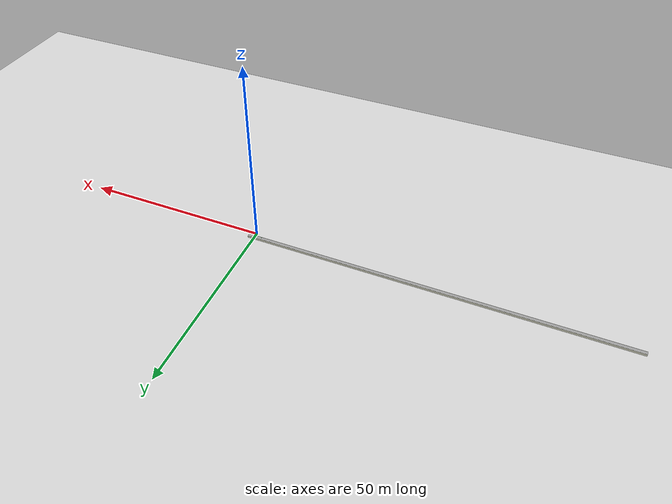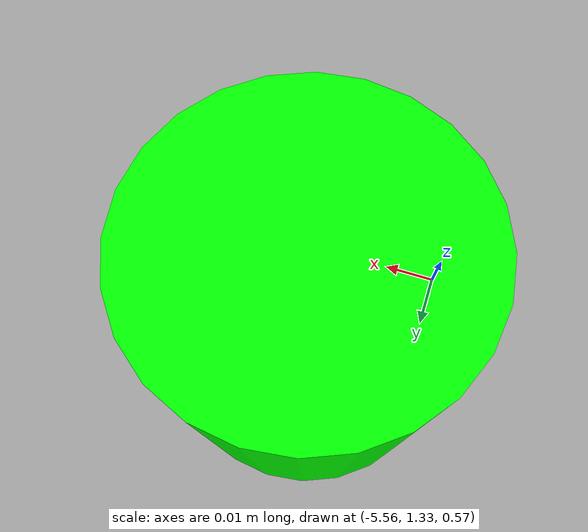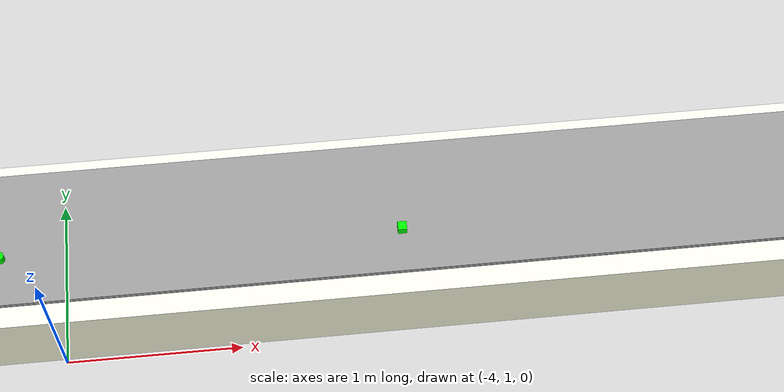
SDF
<sdf version="1.6">
 <world name="default">
  <light name="sun" type="directional">
   <pose>0 0 10 0 -0 0</pose>
   <diffuse>0.8 0.8 0.8 1</diffuse>
   <specular>0.2 0.2 0.2 1</specular>
   <attenuation>
    <range>1000</range>
    <constant>0.9</constant>
    <linear>0.01</linear>
    <quadratic>0.001</quadratic>
   </attenuation>
   <direction>-0.5 0.1 -0.9</direction>
  </light>
  <model name="ground_plane">
   <static>1</static>
   <link name="link">
    <collision name="collision">
     <geometry><plane><normal>0 0 1</normal><size>100 100</size></plane></geometry>
     <surface>
      <contact><collide_bitmask>65535</collide_bitmask></contact>
      <friction><ode><mu>100</mu><mu2>50</mu2></ode></friction>
     </surface>
    </collision>
    <visual name="visual">
     <cast_shadows>0</cast_shadows>
     <geometry><plane><normal>0 0 1</normal><size>100 100</size></plane></geometry>
     <material>
      <script><uri>file://media/materials/scripts/gazebo.material</uri><name>Gazebo/Grey</name></script>
     </material>
    </visual>
   </link>
  </model>
  <gravity>0 0 -9.8</gravity>
  <magnetic_field>6e-06 2.3e-05 -4.2e-05</magnetic_field>
  <atmosphere type="adiabatic"/>
  <physics name="default_physics" default="0" type="ode">
   <max_step_size>0.001</max_step_size>
   <real_time_factor>1</real_time_factor>
   <real_time_update_rate>1000</real_time_update_rate>
  </physics>
  <scene><ambient>0.4 0.4 0.4 1</ambient><background>0.7 0.7 0.7 1</background><shadows>1</shadows></scene>
  <audio><device>default</device></audio>
  <spherical_coordinates>
   <surface_model>EARTH_WGS84</surface_model>
   <latitude_deg>0</latitude_deg>
   <longitude_deg>0</longitude_deg>
   <elevation>0</elevation>
   <heading_deg>0</heading_deg>
  </spherical_coordinates>
  <model name="GREEN_BOX">
   <link name="link_0">
    <inertial>
     <mass>1</mass>
     <inertia>
      <ixx>0.166667</ixx>
      <ixy>0</ixy>
      <ixz>0</ixz>
      <iyy>0.166667</iyy>
      <iyz>0</iyz>
      <izz>0.166667</izz>
     </inertia>
    </inertial>
    <visual name="visual">
     <geometry><box><size>0.05 0.05 0.05</size></box></geometry>
     <material>
      <lighting>1</lighting>
      <script><uri>file://media/materials/scripts/gazebo.material</uri><name>Gazebo/Grey</name></script>
      <shader type="vertex"><normal_map>__default__</normal_map></shader>
      <ambient>0 1 0 1</ambient>
      <diffuse>0.7 0.7 0.7 1</diffuse>
      <specular>0.01 0.01 0.01 1</specular>
      <emissive>0 0 0 1</emissive>
     </material>
    </visual>
    <collision name="collision">
     <geometry><box><size>0.05 0.05 0.05</size></box></geometry>
     <surface>
      <friction>
       <ode><mu>1</mu><mu2>1</mu2><fdir1>0 0 0</fdir1><slip1>0</slip1><slip2>0</slip2></ode>
       <torsional>
        <coefficient>1</coefficient>
        <patch_radius>0</patch_radius>
        <surface_radius>0</surface_radius>
        <use_patch_radius>1</use_patch_radius>
        <ode><slip>0</slip></ode>
       </torsional>
      </friction>
      <bounce><restitution_coefficient>0</restitution_coefficient><threshold>1e+06</threshold></bounce>
      <contact>
       <collide_without_contact>0</collide_without_contact>
       <collide_without_contact_bitmask>1</collide_without_contact_bitmask>
       <collide_bitmask>1</collide_bitmask>
       <ode>
        <soft_cfm>0</soft_cfm>
        <soft_erp>0.2</soft_erp>
        <kp>1e+13</kp>
        <kd>1</kd>
        <max_vel>0.01</max_vel>
        <min_depth>0</min_depth>
       </ode>
       <bullet>
        <split_impulse>1</split_impulse>
        <split_impulse_penetration_threshold>-0.01</split_impulse_penetration_threshold>
        <soft_cfm>0</soft_cfm>
        <soft_erp>0.2</soft_erp>
        <kp>1e+13</kp>
        <kd>1</kd>
       </bullet>
      </contact>
     </surface>
    </collision>
   </link>
   <static>0</static>
   <pose>-2.05795 1.3719 0.599999 3e-06 6e-06 -0.005317</pose>
  </model>
  <model name="GREEN_CYLINDER">
   <link name="link_1">
    <inertial>
     <mass>1</mass>
     <inertia><ixx>0.145833</ixx><ixy>0</ixy><ixz>0</ixz><iyy>0.145833</iyy><iyz>0</iyz><izz>0.125</izz></inertia>
    </inertial>
    <visual name="visual">
     <geometry><cylinder><radius>0.025</radius><length>0.05</length></cylinder></geometry>
     <material>
      <lighting>1</lighting>
      <script><uri>file://media/materials/scripts/gazebo.material</uri><name>Gazebo/Grey</name></script>
      <shader type="vertex"><normal_map>__default__</normal_map></shader>
      <ambient>0.3 0.3 0.3 1</ambient>
      <diffuse>0 1 0 1</diffuse>
      <specular>0.01 0.01 0.01 1</specular>
      <emissive>0 0 0 1</emissive>
     </material>
    </visual>
    <collision name="collision">
     <geometry><cylinder><radius>0.025</radius><length>0.05</length></cylinder></geometry>
     <surface>
      <friction>
       <ode><mu>1</mu><mu2>1</mu2><fdir1>0 0 0</fdir1><slip1>0</slip1><slip2>0</slip2></ode>
       <torsional>
        <coefficient>1</coefficient>
        <patch_radius>0</patch_radius>
        <surface_radius>0</surface_radius>
        <use_patch_radius>1</use_patch_radius>
        <ode><slip>0</slip></ode>
       </torsional>
      </friction>
      <bounce><restitution_coefficient>0</restitution_coefficient><threshold>1e+06</threshold></bounce>
      <contact>
       <collide_without_contact>0</collide_without_contact>
       <collide_without_contact_bitmask>1</collide_without_contact_bitmask>
       <collide_bitmask>1</collide_bitmask>
       <ode>
        <soft_cfm>0</soft_cfm>
        <soft_erp>0.2</soft_erp>
        <kp>1e+13</kp>
        <kd>1</kd>
        <max_vel>0.01</max_vel>
        <min_depth>0</min_depth>
       </ode>
       <bullet>
        <split_impulse>1</split_impulse>
        <split_impulse_penetration_threshold>-0.01</split_impulse_penetration_threshold>
        <soft_cfm>0</soft_cfm>
        <soft_erp>0.2</soft_erp>
        <kp>1e+13</kp>
        <kd>1</kd>
       </bullet>
      </contact>
     </surface>
    </collision>
   </link>
   <static>0</static>
   <pose>-4.26788 1.3959 0.600006 -0.000112 -0.00025 0.001709</pose>
  </model>
  <model name="GREEN_CYLINDER_clone">
   <link name="link_1">
    <inertial>
     <mass>1</mass>
     <inertia><ixx>0.145833</ixx><ixy>0</ixy><ixz>0</ixz><iyy>0.145833</iyy><iyz>0</iyz><izz>0.125</izz></inertia>
    </inertial>
    <visual name="visual">
     <geometry><cylinder><radius>0.025</radius><length>0.05</length></cylinder></geometry>
     <material>
      <lighting>1</lighting>
      <script><uri>file://media/materials/scripts/gazebo.material</uri><name>Gazebo/Grey</name></script>
      <shader type="vertex"><normal_map>__default__</normal_map></shader>
      <ambient>0.3 0.3 0.3 1</ambient>
      <diffuse>0 1 0 1</diffuse>
      <specular>0.01 0.01 0.01 1</specular>
      <emissive>0 0 0 1</emissive>
     </material>
    </visual>
    <collision name="collision">
     <geometry><cylinder><radius>0.025</radius><length>0.05</length></cylinder></geometry>
     <surface>
      <friction>
       <ode><mu>1</mu><mu2>1</mu2><fdir1>0 0 0</fdir1><slip1>0</slip1><slip2>0</slip2></ode>
       <torsional>
        <coefficient>1</coefficient>
        <patch_radius>0</patch_radius>
        <surface_radius>0</surface_radius>
        <use_patch_radius>1</use_patch_radius>
        <ode><slip>0</slip></ode>
       </torsional>
      </friction>
      <bounce><restitution_coefficient>0</restitution_coefficient><threshold>1e+06</threshold></bounce>
      <contact>
       <collide_without_contact>0</collide_without_contact>
       <collide_without_contact_bitmask>1</collide_without_contact_bitmask>
       <collide_bitmask>1</collide_bitmask>
       <ode>
        <soft_cfm>0</soft_cfm>
        <soft_erp>0.2</soft_erp>
        <kp>1e+13</kp>
        <kd>1</kd>
        <max_vel>0.01</max_vel>
        <min_depth>0</min_depth>
       </ode>
       <bullet>
        <split_impulse>1</split_impulse>
        <split_impulse_penetration_threshold>-0.01</split_impulse_penetration_threshold>
        <soft_cfm>0</soft_cfm>
        <soft_erp>0.2</soft_erp>
        <kp>1e+13</kp>
        <kd>1</kd>
       </bullet>
      </contact>
     </surface>
    </collision>
   </link>
   <static>0</static>
   <pose>-5.53995 1.35356 0.599996 -0.000112 -0.000248 0.002009</pose>
  </model>
  <model name="NewFliessband_2_">
   <link name="link_2">
    <inertial>
     <mass>500000</mass>
     <inertia>
      <ixx>52083.3</ixx>
      <ixy>0</ixy>
      <ixz>0</ixz>
      <iyy>4.16677e+08</iyy>
      <iyz>0</iyz>
      <izz>4.16708e+08</izz>
     </inertia>
    </inertial>
    <pose>0 -0 -0.15 0 -0 0</pose>
    <visual name="visual">
     <geometry><box><size>100 1 0.5</size></box></geometry>
     <material>
      <lighting>1</lighting>
      <script><uri>file://media/materials/scripts/gazebo.material</uri><name>Gazebo/Grey</name></script>
      <shader type="pixel"><normal_map>__default__</normal_map></shader>
      <ambient>1 1 0.9 1</ambient>
      <diffuse>0.7 0.7 0.7 1</diffuse>
      <specular>0.01 0.01 0.01 1</specular>
      <emissive>0 0 0 1</emissive>
     </material>
    </visual>
    <collision name="collision">
     <geometry><box><size>100 1 0.5</size></box></geometry>
     <surface>
      <friction>
       <ode><mu>1</mu><mu2>1</mu2><fdir1>0 0 0</fdir1><slip1>0</slip1><slip2>0</slip2></ode>
       <torsional>
        <coefficient>1</coefficient>
        <patch_radius>0</patch_radius>
        <surface_radius>0</surface_radius>
        <use_patch_radius>1</use_patch_radius>
        <ode><slip>0</slip></ode>
       </torsional>
      </friction>
      <bounce><restitution_coefficient>0</restitution_coefficient><threshold>1e+06</threshold></bounce>
      <contact>
       <collide_without_contact>0</collide_without_contact>
       <collide_without_contact_bitmask>1</collide_without_contact_bitmask>
       <collide_bitmask>1</collide_bitmask>
       <ode>
        <soft_cfm>0</soft_cfm>
        <soft_erp>0.2</soft_erp>
        <kp>1e+13</kp>
        <kd>1</kd>
        <max_vel>0.01</max_vel>
        <min_depth>0</min_depth>
       </ode>
       <bullet>
        <split_impulse>1</split_impulse>
        <split_impulse_penetration_threshold>-0.01</split_impulse_penetration_threshold>
        <soft_cfm>0</soft_cfm>
        <soft_erp>0.2</soft_erp>
        <kp>1e+13</kp>
        <kd>1</kd>
       </bullet>
      </contact>
     </surface>
    </collision>
   </link>
   <link name="link_2_clone">
    <inertial>
     <mass>10000</mass>
     <inertia>
      <ixx>1041.67</ixx>
      <ixy>0</ixy>
      <ixz>0</ixz>
      <iyy>8.33354e+06</iyy>
      <iyz>0</iyz>
      <izz>8.33417e+06</izz>
     </inertia>
    </inertial>
    <pose>-0 0 0.15 0 -0 0</pose>
    <visual name="visual">
     <geometry><box><size>100 0.8 0.01</size></box></geometry>
     <material>
      <lighting>1</lighting>
      <script><uri>file://media/materials/scripts/gazebo.material</uri><name>Gazebo/Grey</name></script>
      <shader type="pixel"><normal_map>__default__</normal_map></shader>
      <ambient>0 0 0 1</ambient>
      <diffuse>0.7 0.7 0.7 1</diffuse>
      <specular>0.01 0.01 0.01 1</specular>
      <emissive>0 0 0 1</emissive>
     </material>
    </visual>
    <collision name="collision">
     <geometry><box><size>100 0.8 0.01</size></box></geometry>
     <surface>
      <friction>
       <ode><mu>1</mu><mu2>1</mu2><fdir1>0 0 0</fdir1><slip1>0</slip1><slip2>0</slip2></ode>
       <torsional>
        <coefficient>1</coefficient>
        <patch_radius>0</patch_radius>
        <surface_radius>0</surface_radius>
        <use_patch_radius>1</use_patch_radius>
        <ode><slip>0</slip></ode>
       </torsional>
      </friction>
      <bounce><restitution_coefficient>0</restitution_coefficient><threshold>1e+06</threshold></bounce>
      <contact>
       <collide_without_contact>0</collide_without_contact>
       <collide_without_contact_bitmask>1</collide_without_contact_bitmask>
       <collide_bitmask>1</collide_bitmask>
       <ode>
        <soft_cfm>0</soft_cfm>
        <soft_erp>0.2</soft_erp>
        <kp>1e+13</kp>
        <kd>1</kd>
        <max_vel>0.01</max_vel>
        <min_depth>0</min_depth>
       </ode>
       <bullet>
        <split_impulse>1</split_impulse>
        <split_impulse_penetration_threshold>-0.01</split_impulse_penetration_threshold>
        <soft_cfm>0</soft_cfm>
        <soft_erp>0.2</soft_erp>
        <kp>1e+13</kp>
        <kd>1</kd>
       </bullet>
      </contact>
     </surface>
    </collision>
   </link>
   <link name="link_2_clone_clone">
    <inertial>
     <mass>200</mass>
     <inertia><ixx>10</ixx><ixy>0</ixy><ixz>0</ixz><iyy>10</iyy><iyz>0</iyz><izz>10</izz></inertia>
    </inertial>
    <pose>-0 0 0.17 0 -0 0</pose>
    <visual name="visual">
     <geometry><box><size>100 0.8 0.01</size></box></geometry>
     <material>
      <lighting>1</lighting>
      <script><uri>file://media/materials/scripts/gazebo.material</uri><name>Gazebo/Grey</name></script>
      <shader type="pixel"><normal_map>__default__</normal_map></shader>
      <ambient>0 0 0 1</ambient>
      <diffuse>0.7 0.7 0.7 1</diffuse>
      <specular>0.01 0.01 0.01 1</specular>
      <emissive>0 0 0 1</emissive>
     </material>
    </visual>
    <collision name="collision">
     <geometry><box><size>100 0.8 0.01</size></box></geometry>
     <surface>
      <friction>
       <ode><mu>1</mu><mu2>1</mu2><fdir1>0 0 0</fdir1><slip1>0</slip1><slip2>0</slip2></ode>
       <torsional>
        <coefficient>1</coefficient>
        <patch_radius>0</patch_radius>
        <surface_radius>0</surface_radius>
        <use_patch_radius>1</use_patch_radius>
        <ode><slip>0</slip></ode>
       </torsional>
      </friction>
      <bounce><restitution_coefficient>0</restitution_coefficient><threshold>1e+06</threshold></bounce>
      <contact>
       <collide_without_contact>0</collide_without_contact>
       <collide_without_contact_bitmask>1</collide_without_contact_bitmask>
       <collide_bitmask>1</collide_bitmask>
       <ode>
        <soft_cfm>0</soft_cfm>
        <soft_erp>0.2</soft_erp>
        <kp>1e+13</kp>
        <kd>1</kd>
        <max_vel>0.01</max_vel>
        <min_depth>0</min_depth>
       </ode>
       <bullet>
        <split_impulse>1</split_impulse>
        <split_impulse_penetration_threshold>-0.01</split_impulse_penetration_threshold>
        <soft_cfm>0</soft_cfm>
        <soft_erp>0.2</soft_erp>
        <kp>1e+13</kp>
        <kd>1</kd>
       </bullet>
      </contact>
     </surface>
    </collision>
   </link>
   <joint name="link_2_JOINT_1" type="prismatic">
    <parent>link_2</parent>
    <child>link_2_clone</child>
    <axis>
     <xyz>1 0 0</xyz>
     <use_parent_model_frame>0</use_parent_model_frame>
     <limit>
      <lower>-1.79769e+308</lower>
      <upper>1.79769e+308</upper>
      <effort>-1</effort>
      <velocity>-1</velocity>
     </limit>
     <dynamics>
      <spring_reference>0</spring_reference>
      <spring_stiffness>0</spring_stiffness>
      <damping>0</damping>
      <friction>0</friction>
     </dynamics>
    </axis>
    <physics>
     <ode><limit><cfm>0</cfm><erp>0.2</erp></limit><suspension><cfm>0</cfm><erp>0.2</erp></suspension></ode>
    </physics>
   </joint>
   <joint name="link_2_JOINT_2" type="prismatic">
    <parent>link_2</parent>
    <child>link_2_clone_clone</child>
    <axis>
     <xyz>1 0 0</xyz>
     <use_parent_model_frame>0</use_parent_model_frame>
     <limit>
      <lower>-1.79769e+308</lower>
      <upper>1.79769e+308</upper>
      <effort>-1</effort>
      <velocity>1</velocity>
     </limit>
     <dynamics>
      <spring_reference>0</spring_reference>
      <spring_stiffness>0</spring_stiffness>
      <damping>0</damping>
      <friction>0</friction>
     </dynamics>
    </axis>
    <physics>
     <ode><limit><cfm>0</cfm><erp>0.2</erp></limit><suspension><cfm>0</cfm><erp>0.2</erp></suspension></ode>
    </physics>
   </joint>
   <static>0</static>
   <pose>-48.4031 1.52079 0.399999 0 -0 0</pose>
  </model>
 </world>
</sdf>
